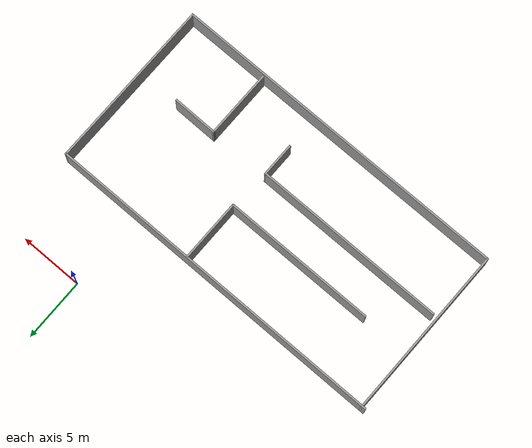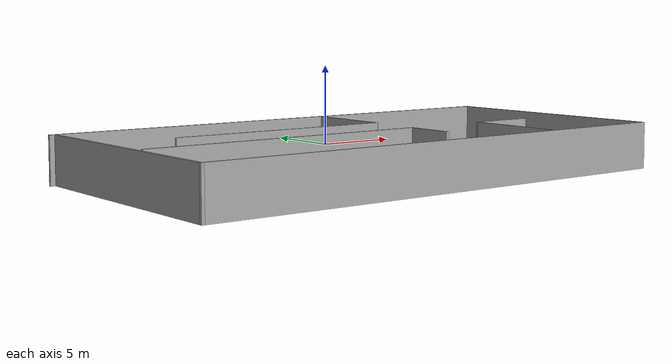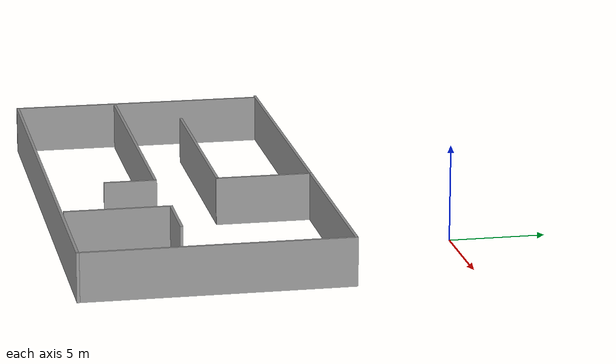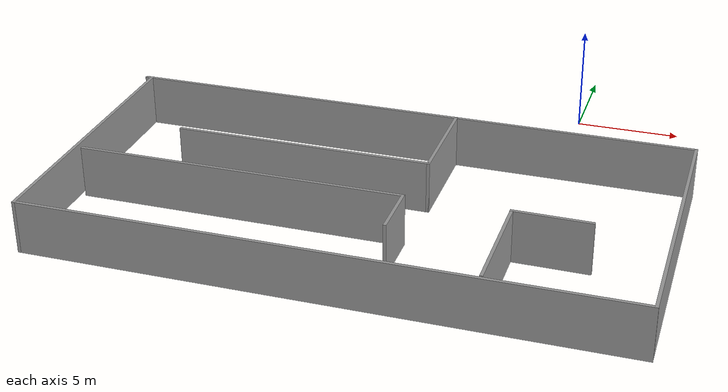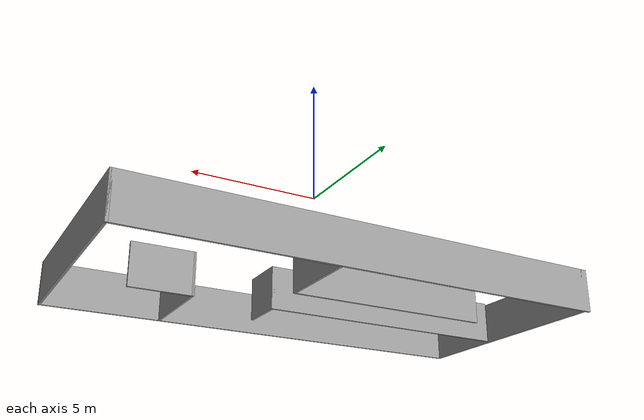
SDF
<?xml version='1.0'?>
<sdf version='1.7'>
  <model name='room'>
    <pose>-7.40887 -9.95353 0 0 -0 0</pose>
    <link name='Wall_20'>
      <collision name='Wall_20_Collision'>
        <geometry>
          <box>
            <size>27.75 0.15 2.5</size>
          </box>
        </geometry>
        <pose>0 0 1.25 0 -0 0</pose>
      </collision>
      <visual name='Wall_20_Visual'>
        <pose>0 0 1.25 0 -0 0</pose>
        <geometry>
          <box>
            <size>27.75 0.15 2.5</size>
          </box>
        </geometry>
        <material>
          <script>
            <uri>file://media/materials/scripts/gazebo.material</uri>
            <name>Gazebo/Grey</name>
          </script>
          <ambient>1 1 1 1</ambient>
        </material>
        <meta>
          <layer>0</layer>
        </meta>
      </visual>
      <pose>0 3.72147 0 0 -0 0</pose>
    </link>
    <link name='Wall_21'>
      <collision name='Wall_21_Collision'>
        <geometry>
          <box>
            <size>13.75 0.15 2.5</size>
          </box>
        </geometry>
        <pose>0 0 1.25 0 -0 0</pose>
      </collision>
      <visual name='Wall_21_Visual'>
        <pose>0 0 1.25 0 -0 0</pose>
        <geometry>
          <box>
            <size>13.75 0.15 2.5</size>
          </box>
        </geometry>
        <material>
          <script>
            <uri>file://media/materials/scripts/gazebo.material</uri>
            <name>Gazebo/Grey</name>
          </script>
          <ambient>1 1 1 1</ambient>
        </material>
        <meta>
          <layer>0</layer>
        </meta>
      </visual>
      <pose>13.8 -3.07853 0 0 -0 -1.5708</pose>
    </link>
    <link name='Wall_22'>
      <collision name='Wall_22_Collision'>
        <geometry>
          <box>
            <size>27.5 0.15 2.5</size>
          </box>
        </geometry>
        <pose>0 0 1.25 0 -0 0</pose>
      </collision>
      <visual name='Wall_22_Visual'>
        <pose>0 0 1.25 0 -0 0</pose>
        <geometry>
          <box>
            <size>27.5 0.15 2.5</size>
          </box>
        </geometry>
        <material>
          <script>
            <uri>file://media/materials/scripts/gazebo.material</uri>
            <name>Gazebo/Grey</name>
          </script>
          <ambient>1 1 1 1</ambient>
        </material>
        <meta>
          <layer>0</layer>
        </meta>
      </visual>
      <pose>0.125 -9.87853 0 0 -0 3.14159</pose>
    </link>
    <link name='Wall_23'>
      <collision name='Wall_23_Collision'>
        <geometry>
          <box>
            <size>13.75 0.15 2.5</size>
          </box>
        </geometry>
        <pose>0 0 1.25 0 -0 0</pose>
      </collision>
      <visual name='Wall_23_Visual'>
        <pose>0 0 1.25 0 -0 0</pose>
        <geometry>
          <box>
            <size>13.75 0.15 2.5</size>
          </box>
        </geometry>
        <material>
          <script>
            <uri>file://media/materials/scripts/gazebo.material</uri>
            <name>Gazebo/Grey</name>
          </script>
          <ambient>1 1 1 1</ambient>
        </material>
        <meta>
          <layer>0</layer>
        </meta>
      </visual>
      <pose>-13.55 -3.07853 0 0 -0 1.5708</pose>
    </link>
    <link name='Wall_25'>
      <collision name='Wall_25_Collision'>
        <geometry>
          <box>
            <size>12.25 0.15 2.5</size>
          </box>
        </geometry>
        <pose>0 0 1.25 0 -0 0</pose>
      </collision>
      <visual name='Wall_25_Visual'>
        <pose>0 0 1.25 0 -0 0</pose>
        <geometry>
          <box>
            <size>12.25 0.15 2.5</size>
          </box>
        </geometry>
        <material>
          <script>
            <uri>file://media/materials/scripts/gazebo.material</uri>
            <name>Gazebo/Grey</name>
          </script>
          <ambient>1 1 1 1</ambient>
        </material>
        <meta>
          <layer>0</layer>
        </meta>
      </visual>
      <pose>-3.61247 -1.20076 0 0 -0 0</pose>
    </link>
    <link name='Wall_26'>
      <collision name='Wall_26_Collision'>
        <geometry>
          <box>
            <size>5 0.15 2.5</size>
          </box>
        </geometry>
        <pose>0 0 1.25 0 -0 0</pose>
      </collision>
      <visual name='Wall_26_Visual'>
        <pose>0 0 1.25 0 -0 0</pose>
        <geometry>
          <box>
            <size>5 0.15 2.5</size>
          </box>
        </geometry>
        <material>
          <script>
            <uri>file://media/materials/scripts/gazebo.material</uri>
            <name>Gazebo/Grey</name>
          </script>
          <ambient>1 1 1 1</ambient>
        </material>
        <meta>
          <layer>0</layer>
        </meta>
      </visual>
      <pose>2.43753 1.22424 0 0 -0 1.5708</pose>
    </link>
    <link name='Wall_28'>
      <collision name='Wall_28_Collision'>
        <geometry>
          <box>
            <size>15.5 0.15 2.5</size>
          </box>
        </geometry>
        <pose>0 0 1.25 0 -0 0</pose>
      </collision>
      <visual name='Wall_28_Visual'>
        <pose>0 0 1.25 0 -0 0</pose>
        <geometry>
          <box>
            <size>15.5 0.15 2.5</size>
          </box>
        </geometry>
        <material>
          <script>
            <uri>file://media/materials/scripts/gazebo.material</uri>
            <name>Gazebo/Grey</name>
          </script>
          <ambient>1 1 1 1</ambient>
        </material>
        <meta>
          <layer>0</layer>
        </meta>
      </visual>
      <pose>-5.48297 -4.41091 0 0 -0 0</pose>
    </link>
    <link name='Wall_29'>
      <collision name='Wall_29_Collision'>
        <geometry>
          <box>
            <size>2.75 0.15 2.5</size>
          </box>
        </geometry>
        <pose>0 0 1.25 0 -0 0</pose>
      </collision>
      <visual name='Wall_29_Visual'>
        <pose>0 0 1.25 0 -0 0</pose>
        <geometry>
          <box>
            <size>2.75 0.15 2.5</size>
          </box>
        </geometry>
        <material>
          <script>
            <uri>file://media/materials/scripts/gazebo.material</uri>
            <name>Gazebo/Grey</name>
          </script>
          <ambient>1 1 1 1</ambient>
        </material>
        <meta>
          <layer>0</layer>
        </meta>
      </visual>
      <pose>2.19203 -5.71091 0 0 -0 -1.5708</pose>
    </link>
    <link name='Wall_31'>
      <collision name='Wall_31_Collision'>
        <geometry>
          <box>
            <size>5.5 0.15 2.5</size>
          </box>
        </geometry>
        <pose>0 0 1.25 0 -0 0</pose>
      </collision>
      <visual name='Wall_31_Visual'>
        <pose>0 0 1.25 0 -0 0</pose>
        <geometry>
          <box>
            <size>5.5 0.15 2.5</size>
          </box>
        </geometry>
        <material>
          <script>
            <uri>file://media/materials/scripts/gazebo.material</uri>
            <name>Gazebo/Grey</name>
          </script>
          <ambient>1 1 1 1</ambient>
        </material>
        <meta>
          <layer>0</layer>
        </meta>
      </visual>
      <pose>6.95897 -6.97858 0 0 -0 -1.5708</pose>
    </link>
    <link name='Wall_33'>
      <collision name='Wall_33_Collision'>
        <geometry>
          <box>
            <size>3.64568 0.15 2.5</size>
          </box>
        </geometry>
        <pose>0 0 1.25 0 -0 0</pose>
      </collision>
      <visual name='Wall_33_Visual'>
        <pose>0 0 1.25 0 -0 0</pose>
        <geometry>
          <box>
            <size>3.64568 0.15 2.5</size>
          </box>
        </geometry>
        <material>
          <script>
            <uri>file://media/materials/scripts/gazebo.material</uri>
            <name>Gazebo/Grey</name>
          </script>
          <ambient>1 1 1 1</ambient>
        </material>
        <meta>
          <layer>0</layer>
        </meta>
      </visual>
      <pose>8.70672 -4.32158 0 0 -0 3.1313</pose>
    </link>
    <static>1</static>
  </model>
</sdf>
